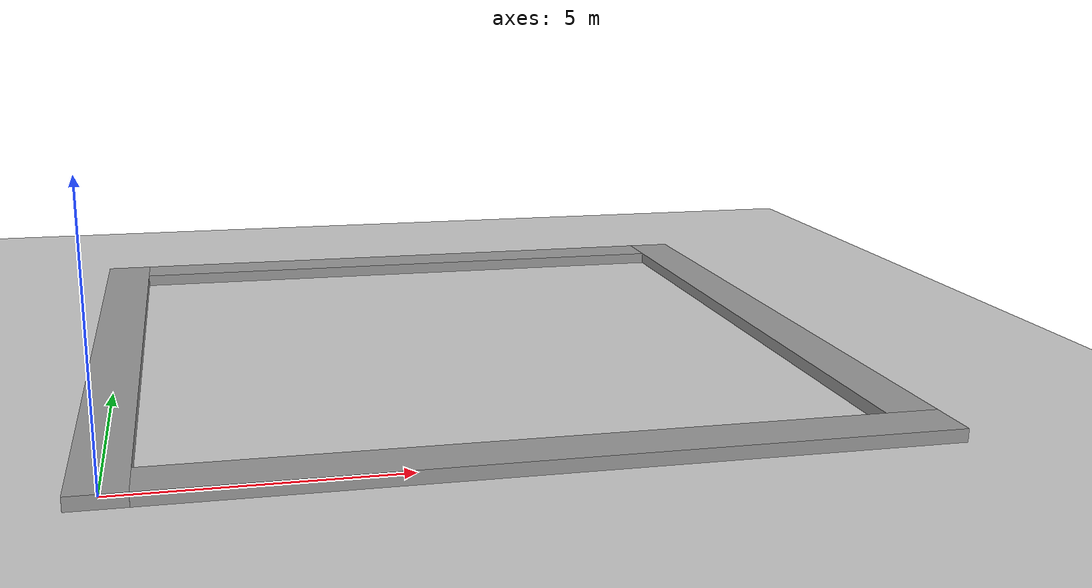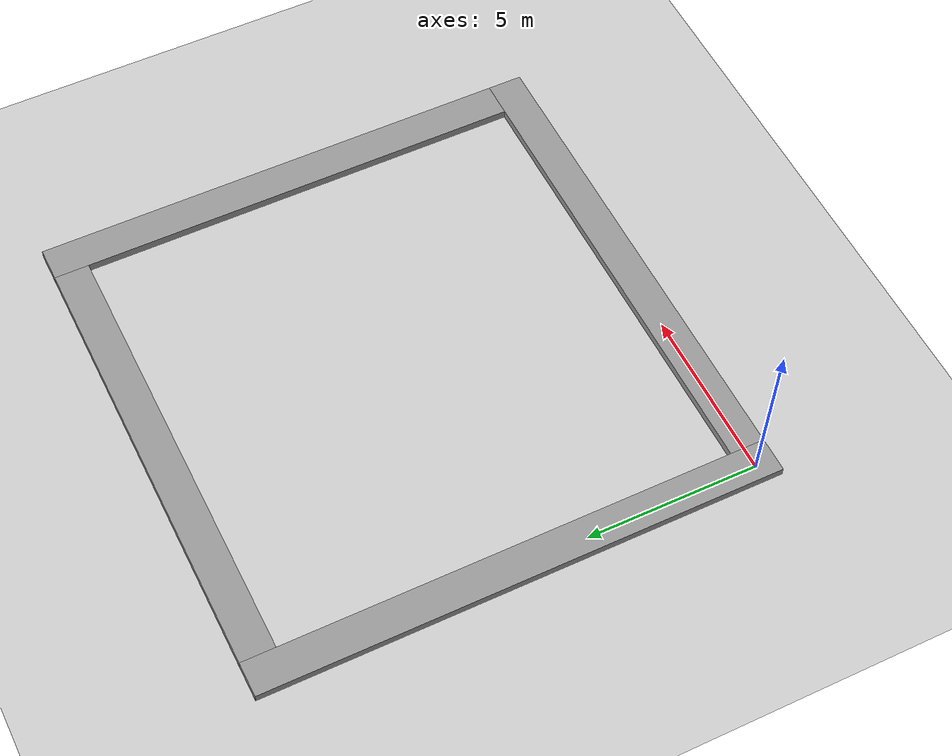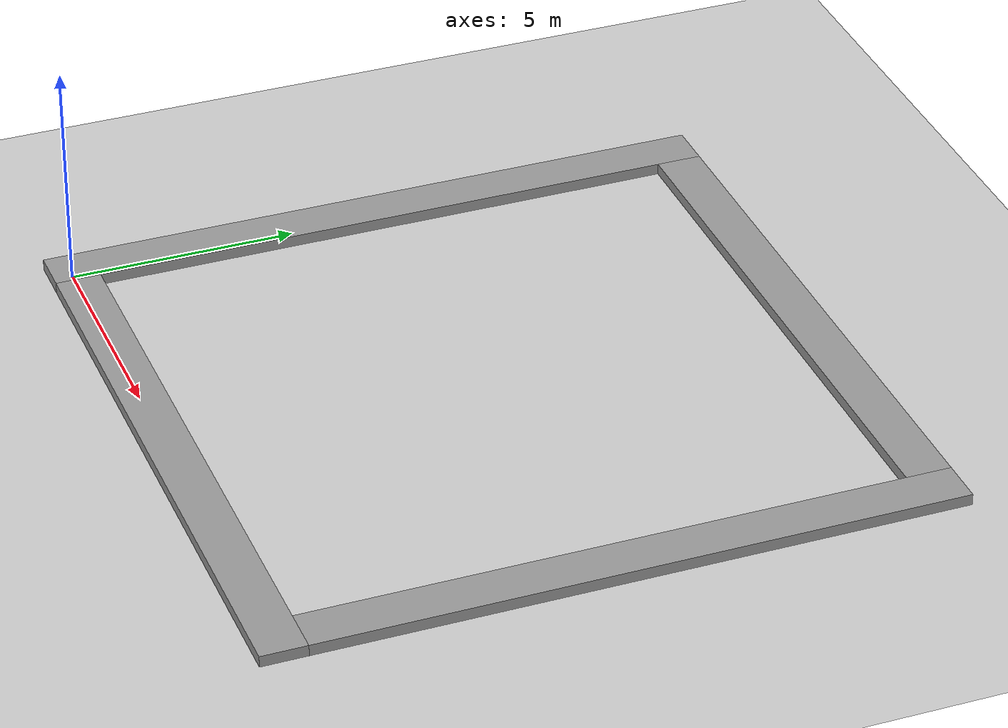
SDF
<sdf version="1.4">
  <world name="default">

    <scene>
      <ambient>0.4 0.4 0.4 1</ambient>
      <background>0.7 0.7 0.7 1</background>
      <shadows>true</shadows>
    </scene>

    <!-- A global light source -->
    <include>
      <uri>model://sun</uri>
    </include>

    <!-- A ground plane -->
    <include>
      <uri>model://ground_plane</uri>
    </include>

	<!-- Maze -->
    <include>
      <uri>model://empty</uri>
    </include>

    <physics type="ode">
      <real_time_update_rate>1000.0</real_time_update_rate>
      <max_step_size>0.001</max_step_size>
      <real_time_factor>1</real_time_factor>
      <ode>
        <solver>
          <type>quick</type>
          <iters>150</iters>
          <precon_iters>0</precon_iters>
          <sor>1.400000</sor>
          <use_dynamic_moi_rescaling>1</use_dynamic_moi_rescaling>
        </solver>
        <constraints>
          <cfm>0.00001</cfm>
          <erp>0.2</erp>
          <contact_max_correcting_vel>2000.000000</contact_max_correcting_vel>
          <contact_surface_layer>0.01000</contact_surface_layer>
        </constraints>
      </ode>
    </physics>
  </world>

</sdf>

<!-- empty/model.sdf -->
<sdf version='1.7'>
  <model name='empty_map'>
    <pose>7 7 0 0 -0 0</pose>
    <link name='Wall_13'>
      <collision name='Wall_13_Collision'>
        <geometry>
          <box>
            <size>15 1 0.25</size>
          </box>
        </geometry>
        <pose>0 0 0.125 0 -0 0</pose>
      </collision>
      <visual name='Wall_13_Visual'>
        <pose>0 0 0.125 0 -0 0</pose>
        <geometry>
          <box>
            <size>15 1 0.25</size>
          </box>
        </geometry>
        <material>
          <script>
            <uri>file://media/materials/scripts/gazebo.material</uri>
            <name>Gazebo/Grey</name>
          </script>
          <ambient>1 1 1 1</ambient>
        </material>
        <meta>
          <layer>0</layer>
        </meta>
      </visual>
      <pose>-7 0 0 0 -0 1.5708</pose>
    </link>
    <link name='Wall_15'>
      <collision name='Wall_15_Collision'>
        <geometry>
          <box>
            <size>14 1 0.25</size>
          </box>
        </geometry>
        <pose>0 0 0.125 0 -0 0</pose>
      </collision>
      <visual name='Wall_15_Visual'>
        <pose>0 0 0.125 0 -0 0</pose>
        <geometry>
          <box>
            <size>14 1 0.25</size>
          </box>
        </geometry>
        <material>
          <script>
            <uri>file://media/materials/scripts/gazebo.material</uri>
            <name>Gazebo/Grey</name>
          </script>
          <ambient>1 1 1 1</ambient>
        </material>
        <meta>
          <layer>0</layer>
        </meta>
      </visual>
      <pose>0.5 -7 0 0 -0 0</pose>
    </link>
    <link name='Wall_17'>
      <collision name='Wall_17_Collision'>
        <geometry>
          <box>
            <size>14 1 0.25</size>
          </box>
        </geometry>
        <pose>0 0 0.125 0 -0 0</pose>
      </collision>
      <visual name='Wall_17_Visual'>
        <pose>0 0 0.125 0 -0 0</pose>
        <geometry>
          <box>
            <size>14 1 0.25</size>
          </box>
        </geometry>
        <material>
          <script>
            <uri>file://media/materials/scripts/gazebo.material</uri>
            <name>Gazebo/Grey</name>
          </script>
          <ambient>1 1 1 1</ambient>
        </material>
        <meta>
          <layer>0</layer>
        </meta>
      </visual>
      <pose>7 0.5 0 0 -0 1.5708</pose>
    </link>
    <link name='Wall_19'>
      <collision name='Wall_19_Collision'>
        <geometry>
          <box>
            <size>13 1 0.25</size>
          </box>
        </geometry>
        <pose>0 0 0.125 0 -0 0</pose>
      </collision>
      <visual name='Wall_19_Visual'>
        <pose>0 0 0.125 0 -0 0</pose>
        <geometry>
          <box>
            <size>13 1 0.25</size>
          </box>
        </geometry>
        <material>
          <script>
            <uri>file://media/materials/scripts/gazebo.material</uri>
            <name>Gazebo/Grey</name>
          </script>
          <ambient>1 1 1 1</ambient>
        </material>
        <meta>
          <layer>0</layer>
        </meta>
      </visual>
      <pose>0 7 0 0 -0 3.14159</pose>
    </link>
    <static>1</static>
  </model>
</sdf>
